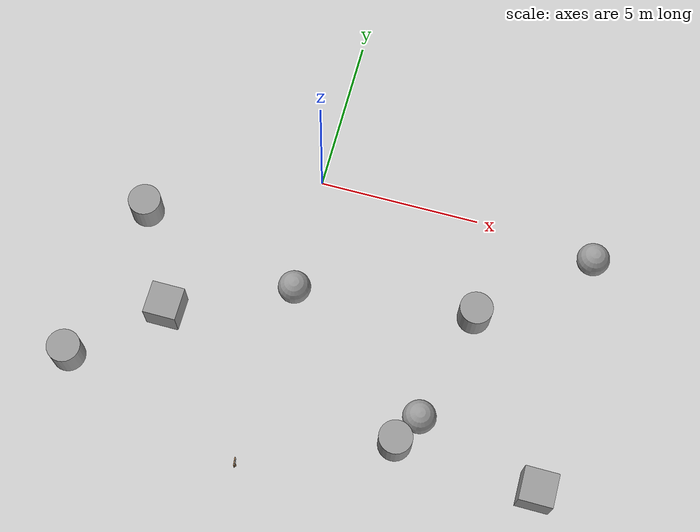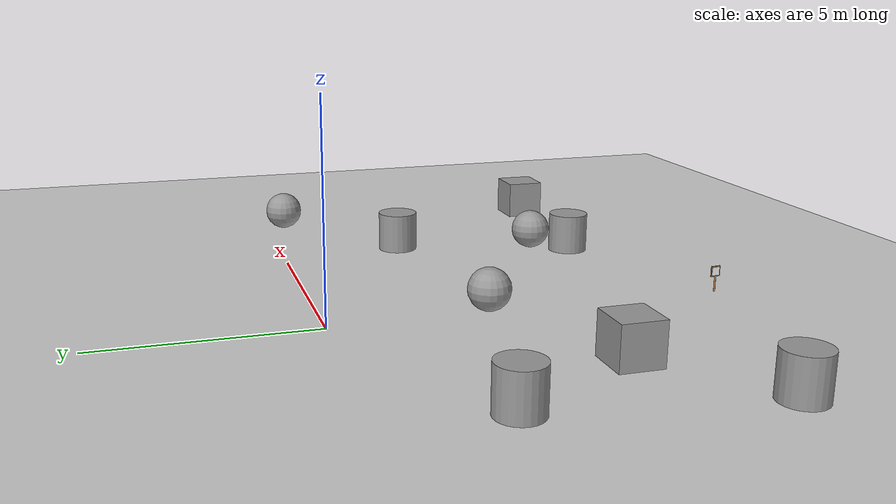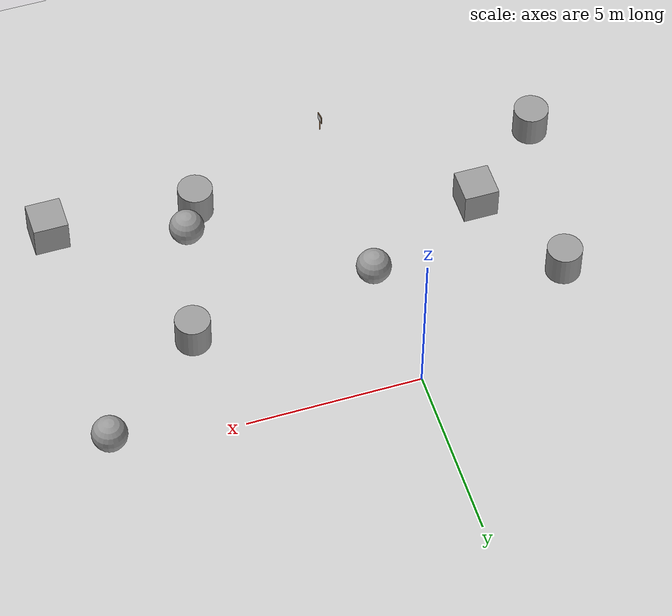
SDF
<sdf version="1.6">
 <world name="default">
  <model name="ground_plane">
   <static>1</static>
   <link name="link">
    <collision name="collision">
     <geometry><plane><normal>0 0 1</normal><size>100 100</size></plane></geometry>
     <surface>
      <contact><collide_bitmask>65535</collide_bitmask></contact>
      <friction><ode><mu>100</mu><mu2>50</mu2></ode></friction>
     </surface>
    </collision>
    <visual name="visual">
     <cast_shadows>0</cast_shadows>
     <geometry><plane><normal>0 0 1</normal><size>100 100</size></plane></geometry>
     <material>
      <script><uri>file://media/materials/scripts/gazebo.material</uri><name>Gazebo/Grey</name></script>
     </material>
    </visual>
   </link>
  </model>
  <model name="unit_box">
   <pose>-3.4049 -5.31639 0.499995 0 1e-05 -1.1e-05</pose>
   <link name="link">
    <inertial>
     <mass>1</mass>
     <inertia>
      <ixx>0.166667</ixx>
      <ixy>0</ixy>
      <ixz>0</ixz>
      <iyy>0.166667</iyy>
      <iyz>0</iyz>
      <izz>0.166667</izz>
     </inertia>
    </inertial>
    <collision name="collision"><geometry><box><size>1 1 1</size></box></geometry></collision>
    <visual name="visual">
     <geometry><box><size>1 1 1</size></box></geometry>
     <material>
      <script><name>Gazebo/Grey</name><uri>file://media/materials/scripts/gazebo.material</uri></script>
     </material>
    </visual>
   </link>
  </model>
  <model name="unit_sphere">
   <pose>0.161192 -3.7282 0.5 0 -0 0</pose>
   <link name="link">
    <inertial>
     <mass>1</mass>
     <inertia><ixx>0.1</ixx><ixy>0</ixy><ixz>0</ixz><iyy>0.1</iyy><iyz>0</iyz><izz>0.1</izz></inertia>
    </inertial>
    <collision name="collision"><geometry><sphere><radius>0.5</radius></sphere></geometry></collision>
    <visual name="visual">
     <geometry><sphere><radius>0.5</radius></sphere></geometry>
     <material>
      <script><name>Gazebo/Grey</name><uri>file://media/materials/scripts/gazebo.material</uri></script>
     </material>
    </visual>
   </link>
  </model>
  <model name="unit_cylinder">
   <pose>4.24787 -7.48664 0.499999 0 0 -1.2e-05</pose>
   <link name="link">
    <inertial>
     <mass>1</mass>
     <inertia><ixx>0.145833</ixx><ixy>0</ixy><ixz>0</ixz><iyy>0.145833</iyy><iyz>0</iyz><izz>0.125</izz></inertia>
    </inertial>
    <collision name="collision">
     <geometry><cylinder><radius>0.5</radius><length>1</length></cylinder></geometry>
    </collision>
    <visual name="visual">
     <geometry><cylinder><radius>0.5</radius><length>1</length></cylinder></geometry>
     <material>
      <script><name>Gazebo/Grey</name><uri>file://media/materials/scripts/gazebo.material</uri></script>
     </material>
    </visual>
   </link>
  </model>
  <model name="unit_cylinder_1">
   <pose>5.59649 -3.0992 0.499998 3e-06 -3e-06 0</pose>
   <link name="link">
    <inertial>
     <mass>1</mass>
     <inertia><ixx>0.145833</ixx><ixy>0</ixy><ixz>0</ixz><iyy>0.145833</iyy><iyz>0</iyz><izz>0.125</izz></inertia>
    </inertial>
    <collision name="collision">
     <geometry><cylinder><radius>0.5</radius><length>1</length></cylinder></geometry>
    </collision>
    <visual name="visual">
     <geometry><cylinder><radius>0.5</radius><length>1</length></cylinder></geometry>
     <material>
      <script><name>Gazebo/Grey</name><uri>file://media/materials/scripts/gazebo.material</uri></script>
     </material>
    </visual>
   </link>
  </model>
  <model name="unit_cylinder_2">
   <pose>-4.98063 -2.3723 0.499997 4e-06 4e-06 -0</pose>
   <link name="link">
    <inertial>
     <mass>1</mass>
     <inertia><ixx>0.145833</ixx><ixy>0</ixy><ixz>0</ixz><iyy>0.145833</iyy><iyz>0</iyz><izz>0.125</izz></inertia>
    </inertial>
    <collision name="collision">
     <geometry><cylinder><radius>0.5</radius><length>1</length></cylinder></geometry>
    </collision>
    <visual name="visual">
     <geometry><cylinder><radius>0.5</radius><length>1</length></cylinder></geometry>
     <material>
      <script><name>Gazebo/Grey</name><uri>file://media/materials/scripts/gazebo.material</uri></script>
     </material>
    </visual>
   </link>
  </model>
  <model name="unit_sphere_2">
   <pose>4.75551 -6.6154 0.5 -0.014204 0.009421 0.00337</pose>
   <link name="link">
    <inertial>
     <mass>1</mass>
     <inertia><ixx>0.1</ixx><ixy>0</ixy><ixz>0</ixz><iyy>0.1</iyy><iyz>0</iyz><izz>0.1</izz></inertia>
    </inertial>
    <collision name="collision"><geometry><sphere><radius>0.5</radius></sphere></geometry></collision>
    <visual name="visual">
     <geometry><sphere><radius>0.5</radius></sphere></geometry>
     <material>
      <script><name>Gazebo/Grey</name><uri>file://media/materials/scripts/gazebo.material</uri></script>
     </material>
    </visual>
   </link>
  </model>
  <model name="unit_box_3">
   <pose>8.48757 -7.80084 0.499995 0 1e-05 -1.1e-05</pose>
   <link name="link">
    <inertial>
     <mass>1</mass>
     <inertia>
      <ixx>0.166667</ixx>
      <ixy>0</ixy>
      <ixz>0</ixz>
      <iyy>0.166667</iyy>
      <iyz>0</iyz>
      <izz>0.166667</izz>
     </inertia>
    </inertial>
    <collision name="collision"><geometry><box><size>1 1 1</size></box></geometry></collision>
    <visual name="visual">
     <geometry><box><size>1 1 1</size></box></geometry>
     <material>
      <script><name>Gazebo/Grey</name><uri>file://media/materials/scripts/gazebo.material</uri></script>
     </material>
    </visual>
   </link>
  </model>
  <model name="unit_cylinder_3">
   <pose>-5.81047 -7.41812 0.499999 0 -0 0</pose>
   <link name="link">
    <inertial>
     <mass>1</mass>
     <inertia><ixx>0.145833</ixx><ixy>0</ixy><ixz>0</ixz><iyy>0.145833</iyy><iyz>0</iyz><izz>0.125</izz></inertia>
    </inertial>
    <collision name="collision">
     <geometry><cylinder><radius>0.5</radius><length>1</length></cylinder></geometry>
    </collision>
    <visual name="visual">
     <geometry><cylinder><radius>0.5</radius><length>1</length></cylinder></geometry>
     <material>
      <script><name>Gazebo/Grey</name><uri>file://media/materials/scripts/gazebo.material</uri></script>
     </material>
    </visual>
   </link>
  </model>
  <model name="unit_sphere_4">
   <pose>8.67849 -0.485052 0.5 0 -0 0</pose>
   <link name="link">
    <inertial>
     <mass>1</mass>
     <inertia><ixx>0.1</ixx><ixy>0</ixy><ixz>0</ixz><iyy>0.1</iyy><iyz>0</iyz><izz>0.1</izz></inertia>
    </inertial>
    <collision name="collision"><geometry><sphere><radius>0.5</radius></sphere></geometry></collision>
    <visual name="visual">
     <geometry><sphere><radius>0.5</radius></sphere></geometry>
     <material>
      <script><name>Gazebo/Grey</name><uri>file://media/materials/scripts/gazebo.material</uri></script>
     </material>
    </visual>
   </link>
  </model>
  <model name="aruco_wood_thin">
   <link name="link_0">
    <inertial>
     <mass>1</mass>
     <inertia><ixx>0.145833</ixx><ixy>0</ixy><ixz>0</ixz><iyy>0.145833</iyy><iyz>0</iyz><izz>0.125</izz></inertia>
    </inertial>
    <pose>-0.017932 0.660168 -0.097628 0 -0 0</pose>
    <visual name="visual">
     <geometry><cylinder><radius>0.02</radius><length>0.4</length></cylinder></geometry>
     <material>
      <lighting>1</lighting>
      <script><uri>file://media/materials/scripts/gazebo.material</uri><name>Gazebo/Wood</name></script>
      <shader type="vertex"><normal_map>__default__</normal_map></shader>
      <ambient>0.3 0.3 0.3 1</ambient>
      <diffuse>0.7 0.7 0.7 1</diffuse>
      <specular>0.01 0.01 0.01 1</specular>
      <emissive>0 0 0 1</emissive>
     </material>
    </visual>
    <collision name="collision">
     <geometry><cylinder><radius>0.02</radius><length>0.4</length></cylinder></geometry>
     <surface>
      <friction>
       <ode><mu>1</mu><mu2>1</mu2><fdir1>0 0 0</fdir1><slip1>0</slip1><slip2>0</slip2></ode>
       <torsional>
        <coefficient>1</coefficient>
        <patch_radius>0</patch_radius>
        <surface_radius>0</surface_radius>
        <use_patch_radius>1</use_patch_radius>
        <ode><slip>0</slip></ode>
       </torsional>
      </friction>
      <bounce><restitution_coefficient>0</restitution_coefficient><threshold>1e+06</threshold></bounce>
      <contact>
       <collide_without_contact>0</collide_without_contact>
       <collide_without_contact_bitmask>1</collide_without_contact_bitmask>
       <collide_bitmask>1</collide_bitmask>
       <ode>
        <soft_cfm>0</soft_cfm>
        <soft_erp>0.2</soft_erp>
        <kp>1e+13</kp>
        <kd>1</kd>
        <max_vel>0.01</max_vel>
        <min_depth>0</min_depth>
       </ode>
       <bullet>
        <split_impulse>1</split_impulse>
        <split_impulse_penetration_threshold>-0.01</split_impulse_penetration_threshold>
        <soft_cfm>0</soft_cfm>
        <soft_erp>0.2</soft_erp>
        <kp>1e+13</kp>
        <kd>1</kd>
       </bullet>
      </contact>
     </surface>
    </collision>
   </link>
   <link name="link_1">
    <inertial>
     <mass>1.21407</mass>
     <inertia>
      <ixx>0.00864359</ixx>
      <ixy>0</ixy>
      <ixz>0</ixz>
      <iyy>0.00421539</iyy>
      <iyz>0</iyz>
      <izz>0.00446773</izz>
     </inertia>
    </inertial>
    <pose>-0.025899 0.66382 0.194379 0 -0 0</pose>
    <visual name="visual">
     <geometry><box><size>0.013978 0.209676 0.203642</size></box></geometry>
     <material>
      <script><uri>file://scripts</uri><uri>file://textures</uri><name>aruco/standard_opp</name></script>
      <emissive>0 0 0 1</emissive>
      <shader type="vertex"><normal_map>__default__</normal_map></shader>
      <ambient>1 1 1 1</ambient>
      <diffuse>1 1 1 1</diffuse>
      <specular>0 0 0 1</specular>
     </material>
    </visual>
    <collision name="collision">
     <geometry><box><size>0.013978 0.209676 0.203642</size></box></geometry>
     <surface>
      <friction>
       <ode><mu>1</mu><mu2>1</mu2><fdir1>0 0 0</fdir1><slip1>0</slip1><slip2>0</slip2></ode>
       <torsional>
        <coefficient>1</coefficient>
        <patch_radius>0</patch_radius>
        <surface_radius>0</surface_radius>
        <use_patch_radius>1</use_patch_radius>
        <ode><slip>0</slip></ode>
       </torsional>
      </friction>
      <bounce><restitution_coefficient>0</restitution_coefficient><threshold>1e+06</threshold></bounce>
      <contact>
       <collide_without_contact>0</collide_without_contact>
       <collide_without_contact_bitmask>1</collide_without_contact_bitmask>
       <collide_bitmask>1</collide_bitmask>
       <ode>
        <soft_cfm>0</soft_cfm>
        <soft_erp>0.2</soft_erp>
        <kp>1e+13</kp>
        <kd>1</kd>
        <max_vel>0.01</max_vel>
        <min_depth>0</min_depth>
       </ode>
       <bullet>
        <split_impulse>1</split_impulse>
        <split_impulse_penetration_threshold>-0.01</split_impulse_penetration_threshold>
        <soft_cfm>0</soft_cfm>
        <soft_erp>0.2</soft_erp>
        <kp>1e+13</kp>
        <kd>1</kd>
       </bullet>
      </contact>
     </surface>
    </collision>
   </link>
   <link name="link_1_clone">
    <inertial>
     <mass>0.519809</mass>
     <inertia>
      <ixx>0.00549167</ixx>
      <ixy>0</ixy>
      <ixz>0</ixz>
      <iyy>0.00278045</iyy>
      <iyz>0</iyz>
      <izz>0.00275135</izz>
     </inertia>
    </inertial>
    <pose>-0.015207 0.663184 0.195267 0 -0 0</pose>
    <visual name="visual">
     <geometry><box><size>0.021523 0.251103 0.252437</size></box></geometry>
     <material>
      <script><uri>file://scripts</uri><uri>file://textures</uri><name>Gazebo/Wood</name></script>
      <shader type="vertex"><normal_map>__default__</normal_map></shader>
      <ambient>1 1 1 1</ambient>
      <diffuse>1 1 1 1</diffuse>
      <specular>0 0 0 1</specular>
      <emissive>0 0 0 1</emissive>
     </material>
    </visual>
    <collision name="collision">
     <geometry><box><size>0.021523 0.251103 0.252437</size></box></geometry>
     <surface>
      <friction>
       <ode><mu>1</mu><mu2>1</mu2><fdir1>0 0 0</fdir1><slip1>0</slip1><slip2>0</slip2></ode>
       <torsional>
        <coefficient>1</coefficient>
        <patch_radius>0</patch_radius>
        <surface_radius>0</surface_radius>
        <use_patch_radius>1</use_patch_radius>
        <ode><slip>0</slip></ode>
       </torsional>
      </friction>
      <bounce><restitution_coefficient>0</restitution_coefficient><threshold>1e+06</threshold></bounce>
      <contact>
       <collide_without_contact>0</collide_without_contact>
       <collide_without_contact_bitmask>1</collide_without_contact_bitmask>
       <collide_bitmask>1</collide_bitmask>
       <ode>
        <soft_cfm>0</soft_cfm>
        <soft_erp>0.2</soft_erp>
        <kp>1e+13</kp>
        <kd>1</kd>
        <max_vel>0.01</max_vel>
        <min_depth>0</min_depth>
       </ode>
       <bullet>
        <split_impulse>1</split_impulse>
        <split_impulse_penetration_threshold>-0.01</split_impulse_penetration_threshold>
        <soft_cfm>0</soft_cfm>
        <soft_erp>0.2</soft_erp>
        <kp>1e+13</kp>
        <kd>1</kd>
       </bullet>
      </contact>
     </surface>
    </collision>
   </link>
   <link name="link_1_clone_0">
    <inertial>
     <mass>0.238009</mass>
     <inertia>
      <ixx>0.00161175</ixx>
      <ixy>0</ixy>
      <ixz>0</ixz>
      <iyy>0.000787067</iyy>
      <iyz>0</iyz>
      <izz>0.000832042</izz>
     </inertia>
    </inertial>
    <pose>-0.00403 0.665261 0.195247 0 -0 0</pose>
    <visual name="visual">
     <geometry><box><size>0.013624 0.204363 0.198738</size></box></geometry>
     <material>
      <script><uri>file://scripts</uri><uri>file://textures</uri><name>aruco/standard_opp</name></script>
      <emissive>0 0 0 1</emissive>
      <shader type="vertex"><normal_map>__default__</normal_map></shader>
      <ambient>1 1 1 1</ambient>
      <diffuse>1 1 1 1</diffuse>
      <specular>0 0 0 1</specular>
     </material>
    </visual>
    <collision name="collision">
     <geometry><box><size>0.013624 0.204363 0.198738</size></box></geometry>
     <surface>
      <friction>
       <ode><mu>1</mu><mu2>1</mu2><fdir1>0 0 0</fdir1><slip1>0</slip1><slip2>0</slip2></ode>
       <torsional>
        <coefficient>1</coefficient>
        <patch_radius>0</patch_radius>
        <surface_radius>0</surface_radius>
        <use_patch_radius>1</use_patch_radius>
        <ode><slip>0</slip></ode>
       </torsional>
      </friction>
      <bounce><restitution_coefficient>0</restitution_coefficient><threshold>1e+06</threshold></bounce>
      <contact>
       <collide_without_contact>0</collide_without_contact>
       <collide_without_contact_bitmask>1</collide_without_contact_bitmask>
       <collide_bitmask>1</collide_bitmask>
       <ode>
        <soft_cfm>0</soft_cfm>
        <soft_erp>0.2</soft_erp>
        <kp>1e+13</kp>
        <kd>1</kd>
        <max_vel>0.01</max_vel>
        <min_depth>0</min_depth>
       </ode>
       <bullet>
        <split_impulse>1</split_impulse>
        <split_impulse_penetration_threshold>-0.01</split_impulse_penetration_threshold>
        <soft_cfm>0</soft_cfm>
        <soft_erp>0.2</soft_erp>
        <kp>1e+13</kp>
        <kd>1</kd>
       </bullet>
      </contact>
     </surface>
    </collision>
   </link>
   <joint name="link_0_JOINT_0" type="fixed">
    <parent>link_0</parent>
    <child>link_1</child>
    <physics>
     <ode><limit><cfm>0</cfm><erp>0.2</erp></limit><suspension><cfm>0</cfm><erp>0.2</erp></suspension></ode>
    </physics>
   </joint>
   <joint name="link_1_JOINT_0_0" type="fixed">
    <parent>link_1</parent>
    <child>link_1_clone_0</child>
    <physics>
     <ode><limit><cfm>0</cfm><erp>0.2</erp></limit><suspension><cfm>0</cfm><erp>0.2</erp></suspension></ode>
    </physics>
   </joint>
   <joint name="link_1_JOINT_0" type="fixed">
    <parent>link_1</parent>
    <child>link_1_clone</child>
    <physics>
     <ode><limit><cfm>0</cfm><erp>0.2</erp></limit><suspension><cfm>0</cfm><erp>0.2</erp></suspension></ode>
    </physics>
   </joint>
   <static>0</static>
   <pose>0.075916 -9.96004 0.297635 -1e-05 -3e-06 0.139574</pose>
  </model>
 </world>
</sdf>
